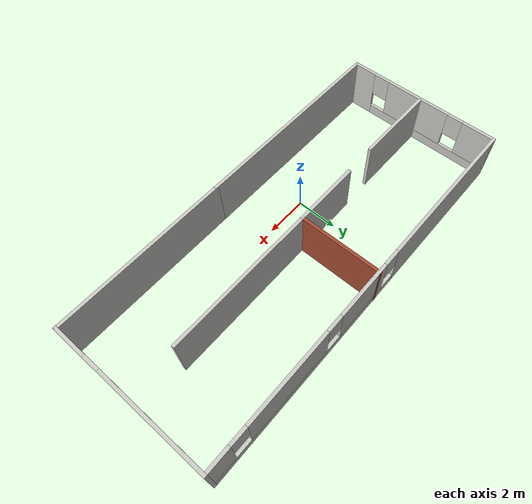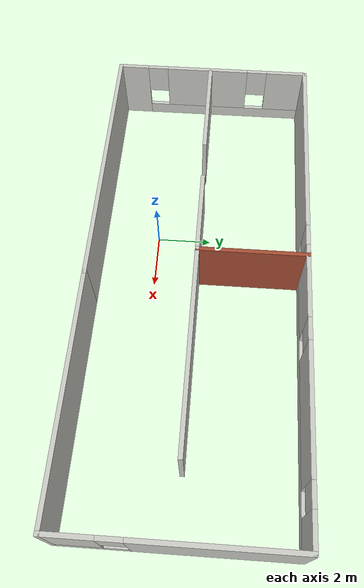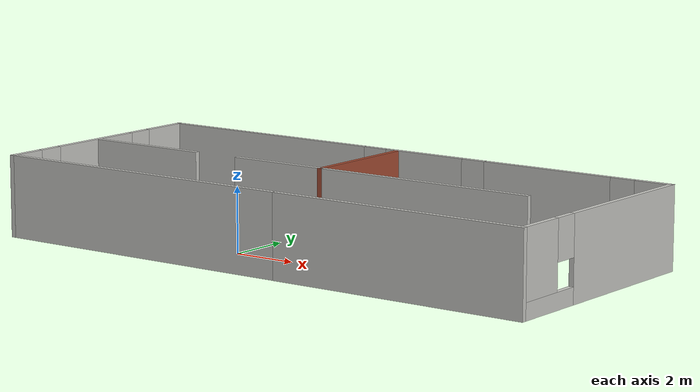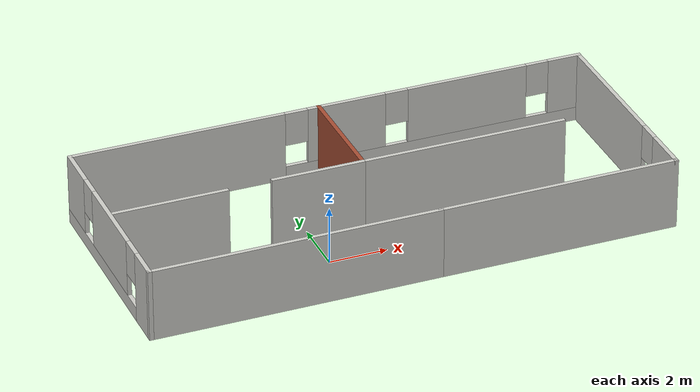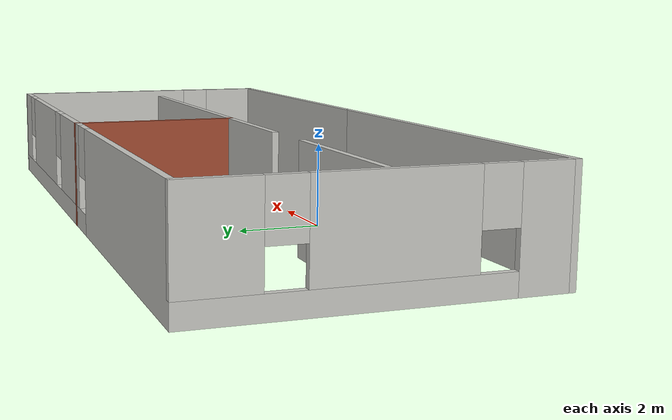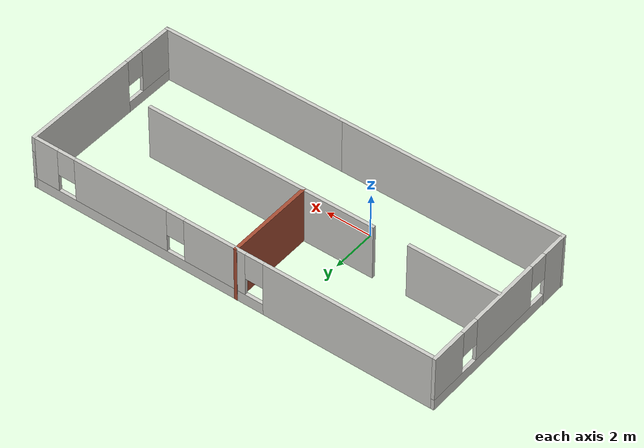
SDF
<?xml version='1.0'?>
<sdf version='1.7'>
  <model name='map_nho'>
    <pose>2.18057 1.66636 0 0 -0 0</pose>
    <link name='Wall_0'>
      <collision name='Wall_0_Collision'>
        <geometry>
          <box>
            <size>10 0.15 2.5</size>
          </box>
        </geometry>
        <pose>0 0 1.25 0 -0 0</pose>
      </collision>
      <visual name='Wall_0_Visual'>
        <pose>0 0 1.25 0 -0 0</pose>
        <geometry>
          <box>
            <size>10 0.15 2.5</size>
          </box>
        </geometry>
        <material>
          <script>
            <uri>file://media/materials/scripts/gazebo.material</uri>
            <name>Gazebo/CeilingTiled</name>
          </script>
          <ambient>0.960784 0.47451 0 1</ambient>
        </material>
        <meta>
          <layer>0</layer>
        </meta>
      </visual>
      <pose>-4.125 -3.8042 0 0 -0 0</pose>
    </link>
    <link name='Wall_10'>
      <pose>9.05 -0.004204 0 0 -0 -1.5708</pose>
      <visual name='Wall_10_Visual_0'>
        <pose>-1.23107 0 1.25 0 -0 0</pose>
        <geometry>
          <box>
            <size>5.28787 0.15 2.5</size>
          </box>
        </geometry>
        <material>
          <script>
            <uri>file://media/materials/scripts/gazebo.material</uri>
            <name>Gazebo/CeilingTiled</name>
          </script>
          <ambient>0.180392 0.203922 0.211765 1</ambient>
        </material>
        <meta>
          <layer>0</layer>
        </meta>
      </visual>
      <collision name='Wall_10_Collision_0'>
        <geometry>
          <box>
            <size>5.28787 0.15 2.5</size>
          </box>
        </geometry>
        <pose>-1.23107 0 1.25 0 -0 0</pose>
      </collision>
      <visual name='Wall_10_Visual_1'>
        <pose>2.64393 0 0.25 0 -0 0</pose>
        <geometry>
          <box>
            <size>2.46213 0.15 0.5</size>
          </box>
        </geometry>
        <material>
          <script>
            <uri>file://media/materials/scripts/gazebo.material</uri>
            <name>Gazebo/CeilingTiled</name>
          </script>
          <ambient>0.180392 0.203922 0.211765 1</ambient>
        </material>
        <meta>
          <layer>0</layer>
        </meta>
      </visual>
      <collision name='Wall_10_Collision_1'>
        <geometry>
          <box>
            <size>2.46213 0.15 0.5</size>
          </box>
        </geometry>
        <pose>2.64393 0 0.25 0 -0 0</pose>
      </collision>
      <visual name='Wall_10_Visual_2'>
        <pose>3.04393 0 1.5 0 -0 0</pose>
        <geometry>
          <box>
            <size>1.66213 0.15 2</size>
          </box>
        </geometry>
        <material>
          <script>
            <uri>file://media/materials/scripts/gazebo.material</uri>
            <name>Gazebo/CeilingTiled</name>
          </script>
          <ambient>0.180392 0.203922 0.211765 1</ambient>
        </material>
        <meta>
          <layer>0</layer>
        </meta>
      </visual>
      <collision name='Wall_10_Collision_2'>
        <geometry>
          <box>
            <size>1.66213 0.15 2</size>
          </box>
        </geometry>
        <pose>3.04393 0 1.5 0 -0 0</pose>
      </collision>
      <visual name='Wall_10_Visual_3'>
        <pose>1.81287 0 1.9 0 -0 0</pose>
        <geometry>
          <box>
            <size>0.8 0.15 1.2</size>
          </box>
        </geometry>
        <material>
          <script>
            <uri>file://media/materials/scripts/gazebo.material</uri>
            <name>Gazebo/CeilingTiled</name>
          </script>
          <ambient>0.180392 0.203922 0.211765 1</ambient>
        </material>
        <meta>
          <layer>0</layer>
        </meta>
      </visual>
      <collision name='Wall_10_Collision_3'>
        <geometry>
          <box>
            <size>0.8 0.15 1.2</size>
          </box>
        </geometry>
        <pose>1.81287 0 1.9 0 -0 0</pose>
      </collision>
    </link>
    <link name='Wall_11'>
      <collision name='Wall_11_Collision'>
        <geometry>
          <box>
            <size>8.4 0.15 2.5</size>
          </box>
        </geometry>
        <pose>0 0 1.25 0 -0 0</pose>
      </collision>
      <visual name='Wall_11_Visual'>
        <pose>0 0 1.25 0 -0 0</pose>
        <geometry>
          <box>
            <size>8.4 0.15 2.5</size>
          </box>
        </geometry>
        <material>
          <script>
            <uri>file://media/materials/scripts/gazebo.material</uri>
            <name>Gazebo/CeilingTiled</name>
          </script>
          <ambient>0.960784 0.47451 0 1</ambient>
        </material>
        <meta>
          <layer>0</layer>
        </meta>
      </visual>
      <pose>4.925 -3.8042 0 0 -0 3.14159</pose>
    </link>
    <link name='Wall_15'>
      <collision name='Wall_15_Collision'>
        <geometry>
          <box>
            <size>4 0.15 2.5</size>
          </box>
        </geometry>
        <pose>0 0 1.25 0 -0 0</pose>
      </collision>
      <visual name='Wall_15_Visual'>
        <pose>0 0 1.25 0 -0 0</pose>
        <geometry>
          <box>
            <size>4 0.15 2.5</size>
          </box>
        </geometry>
        <material>
          <script>
            <uri>file://media/materials/scripts/gazebo.material</uri>
            <name>Gazebo/Bricks</name>
          </script>
          <ambient>1 1 1 1</ambient>
        </material>
        <meta>
          <layer>0</layer>
        </meta>
      </visual>
      <pose>-0.364593 1.8792 0 0 -0 -1.5708</pose>
    </link>
    <link name='Wall_23'>
      <collision name='Wall_23_Collision'>
        <geometry>
          <box>
            <size>3.25 0.15 2.5</size>
          </box>
        </geometry>
        <pose>0 0 1.25 0 -0 0</pose>
      </collision>
      <visual name='Wall_23_Visual'>
        <pose>0 0 1.25 0 -0 0</pose>
        <geometry>
          <box>
            <size>3.25 0.15 2.5</size>
          </box>
        </geometry>
        <material>
          <script>
            <uri>file://media/materials/scripts/gazebo.material</uri>
            <name>Gazebo/CeilingTiled</name>
          </script>
          <ambient>0.937255 0.160784 0.160784 1</ambient>
        </material>
        <meta>
          <layer>0</layer>
        </meta>
      </visual>
      <pose>-1.91459 -0.045796 0 0 -0 3.14159</pose>
    </link>
    <link name='Wall_25'>
      <collision name='Wall_25_Collision'>
        <geometry>
          <box>
            <size>4 0.15 2.5</size>
          </box>
        </geometry>
        <pose>0 0 1.25 0 -0 0</pose>
      </collision>
      <visual name='Wall_25_Visual'>
        <pose>0 0 1.25 0 -0 0</pose>
        <geometry>
          <box>
            <size>4 0.15 2.5</size>
          </box>
        </geometry>
        <material>
          <script>
            <uri>file://media/materials/scripts/gazebo.material</uri>
            <name>Gazebo/CeilingTiled</name>
          </script>
          <ambient>0.8 0 0 1</ambient>
        </material>
        <meta>
          <layer>0</layer>
        </meta>
      </visual>
      <pose>-7.01547 -0.083272 0 0 -0 3.14159</pose>
    </link>
    <link name='Wall_27'>
      <collision name='Wall_27_Collision'>
        <geometry>
          <box>
            <size>7.25 0.15 2.5</size>
          </box>
        </geometry>
        <pose>0 0 1.25 0 -0 0</pose>
      </collision>
      <visual name='Wall_27_Visual'>
        <pose>0 0 1.25 0 -0 0</pose>
        <geometry>
          <box>
            <size>7.25 0.15 2.5</size>
          </box>
        </geometry>
        <material>
          <script>
            <uri>file://media/materials/scripts/gazebo.material</uri>
            <name>Gazebo/CeilingTiled</name>
          </script>
          <ambient>0 1 0 1</ambient>
        </material>
        <meta>
          <layer>0</layer>
        </meta>
      </visual>
      <pose>3.18541 -0.045796 0 0 -0 0</pose>
    </link>
    <link name='Wall_6'>
      <pose>-9.05 -0.004204 0 0 -0 1.5708</pose>
      <visual name='Wall_6_Visual_0'>
        <pose>-3.26066 0 1.25 0 -0 0</pose>
        <geometry>
          <box>
            <size>1.22869 0.15 2.5</size>
          </box>
        </geometry>
        <material>
          <script>
            <uri>file://media/materials/scripts/gazebo.material</uri>
            <name>Gazebo/CeilingTiled</name>
          </script>
          <ambient>0.180392 0.203922 0.211765 1</ambient>
        </material>
        <meta>
          <layer>0</layer>
        </meta>
      </visual>
      <collision name='Wall_6_Collision_0'>
        <geometry>
          <box>
            <size>1.22869 0.15 2.5</size>
          </box>
        </geometry>
        <pose>-3.26066 0 1.25 0 -0 0</pose>
      </collision>
      <visual name='Wall_6_Visual_1'>
        <pose>0.614342 0 0.25 0 -0 0</pose>
        <geometry>
          <box>
            <size>6.52132 0.15 0.5</size>
          </box>
        </geometry>
        <material>
          <script>
            <uri>file://media/materials/scripts/gazebo.material</uri>
            <name>Gazebo/CeilingTiled</name>
          </script>
          <ambient>0.180392 0.203922 0.211765 1</ambient>
        </material>
        <meta>
          <layer>0</layer>
        </meta>
      </visual>
      <collision name='Wall_6_Collision_1'>
        <geometry>
          <box>
            <size>6.52132 0.15 0.5</size>
          </box>
        </geometry>
        <pose>0.614342 0 0.25 0 -0 0</pose>
      </collision>
      <visual name='Wall_6_Visual_2'>
        <pose>-0.20454 0 1.5 0 -0 0</pose>
        <geometry>
          <box>
            <size>3.28355 0.15 2</size>
          </box>
        </geometry>
        <material>
          <script>
            <uri>file://media/materials/scripts/gazebo.material</uri>
            <name>Gazebo/CeilingTiled</name>
          </script>
          <ambient>0.180392 0.203922 0.211765 1</ambient>
        </material>
        <meta>
          <layer>0</layer>
        </meta>
      </visual>
      <collision name='Wall_6_Collision_2'>
        <geometry>
          <box>
            <size>3.28355 0.15 2</size>
          </box>
        </geometry>
        <pose>-0.20454 0 1.5 0 -0 0</pose>
      </collision>
      <visual name='Wall_6_Visual_3'>
        <pose>3.05612 0 1.5 0 -0 0</pose>
        <geometry>
          <box>
            <size>1.63777 0.15 2</size>
          </box>
        </geometry>
        <material>
          <script>
            <uri>file://media/materials/scripts/gazebo.material</uri>
            <name>Gazebo/CeilingTiled</name>
          </script>
          <ambient>0.180392 0.203922 0.211765 1</ambient>
        </material>
        <meta>
          <layer>0</layer>
        </meta>
      </visual>
      <collision name='Wall_6_Collision_3'>
        <geometry>
          <box>
            <size>1.63777 0.15 2</size>
          </box>
        </geometry>
        <pose>3.05612 0 1.5 0 -0 0</pose>
      </collision>
      <visual name='Wall_6_Visual_4'>
        <pose>-2.24632 0 1.9 0 -0 0</pose>
        <geometry>
          <box>
            <size>0.8 0.15 1.2</size>
          </box>
        </geometry>
        <material>
          <script>
            <uri>file://media/materials/scripts/gazebo.material</uri>
            <name>Gazebo/CeilingTiled</name>
          </script>
          <ambient>0.180392 0.203922 0.211765 1</ambient>
        </material>
        <meta>
          <layer>0</layer>
        </meta>
      </visual>
      <collision name='Wall_6_Collision_4'>
        <geometry>
          <box>
            <size>0.8 0.15 1.2</size>
          </box>
        </geometry>
        <pose>-2.24632 0 1.9 0 -0 0</pose>
      </collision>
      <visual name='Wall_6_Visual_5'>
        <pose>1.83723 0 1.9 0 -0 0</pose>
        <geometry>
          <box>
            <size>0.8 0.15 1.2</size>
          </box>
        </geometry>
        <material>
          <script>
            <uri>file://media/materials/scripts/gazebo.material</uri>
            <name>Gazebo/CeilingTiled</name>
          </script>
          <ambient>0.180392 0.203922 0.211765 1</ambient>
        </material>
        <meta>
          <layer>0</layer>
        </meta>
      </visual>
      <collision name='Wall_6_Collision_5'>
        <geometry>
          <box>
            <size>0.8 0.15 1.2</size>
          </box>
        </geometry>
        <pose>1.83723 0 1.9 0 -0 0</pose>
      </collision>
    </link>
    <link name='Wall_9'>
      <pose>-0 3.7958 0 0 -0 0</pose>
      <visual name='Wall_9_Visual_0'>
        <pose>-5.35721 0 1.25 0 -0 0</pose>
        <geometry>
          <box>
            <size>7.53558 0.15 2.5</size>
          </box>
        </geometry>
        <material>
          <script>
            <uri>file://media/materials/scripts/gazebo.material</uri>
            <name>Gazebo/CeilingTiled</name>
          </script>
          <ambient>0.12549 0.290196 0.529412 1</ambient>
        </material>
        <meta>
          <layer>0</layer>
        </meta>
      </visual>
      <collision name='Wall_9_Collision_0'>
        <geometry>
          <box>
            <size>7.53558 0.15 2.5</size>
          </box>
        </geometry>
        <pose>-5.35721 0 1.25 0 -0 0</pose>
      </collision>
      <visual name='Wall_9_Visual_1'>
        <pose>3.76779 0 0.25 0 -0 0</pose>
        <geometry>
          <box>
            <size>10.7144 0.15 0.5</size>
          </box>
        </geometry>
        <material>
          <script>
            <uri>file://media/materials/scripts/gazebo.material</uri>
            <name>Gazebo/CeilingTiled</name>
          </script>
          <ambient>0.12549 0.290196 0.529412 1</ambient>
        </material>
        <meta>
          <layer>0</layer>
        </meta>
      </visual>
      <collision name='Wall_9_Collision_1'>
        <geometry>
          <box>
            <size>10.7144 0.15 0.5</size>
          </box>
        </geometry>
        <pose>3.76779 0 0.25 0 -0 0</pose>
      </collision>
      <visual name='Wall_9_Visual_2'>
        <pose>0.601408 0 1.5 0 -0 0</pose>
        <geometry>
          <box>
            <size>2.78166 0.15 2</size>
          </box>
        </geometry>
        <material>
          <script>
            <uri>file://media/materials/scripts/gazebo.material</uri>
            <name>Gazebo/CeilingTiled</name>
          </script>
          <ambient>0.12549 0.290196 0.529412 1</ambient>
        </material>
        <meta>
          <layer>0</layer>
        </meta>
      </visual>
      <collision name='Wall_9_Collision_2'>
        <geometry>
          <box>
            <size>2.78166 0.15 2</size>
          </box>
        </geometry>
        <pose>0.601408 0 1.5 0 -0 0</pose>
      </collision>
      <visual name='Wall_9_Visual_3'>
        <pose>4.94731 0 1.5 0 -0 0</pose>
        <geometry>
          <box>
            <size>4.31014 0.15 2</size>
          </box>
        </geometry>
        <material>
          <script>
            <uri>file://media/materials/scripts/gazebo.material</uri>
            <name>Gazebo/CeilingTiled</name>
          </script>
          <ambient>0.12549 0.290196 0.529412 1</ambient>
        </material>
        <meta>
          <layer>0</layer>
        </meta>
      </visual>
      <collision name='Wall_9_Collision_3'>
        <geometry>
          <box>
            <size>4.31014 0.15 2</size>
          </box>
        </geometry>
        <pose>4.94731 0 1.5 0 -0 0</pose>
      </collision>
      <visual name='Wall_9_Visual_4'>
        <pose>8.51369 0 1.5 0 -0 0</pose>
        <geometry>
          <box>
            <size>1.22262 0.15 2</size>
          </box>
        </geometry>
        <material>
          <script>
            <uri>file://media/materials/scripts/gazebo.material</uri>
            <name>Gazebo/CeilingTiled</name>
          </script>
          <ambient>0.12549 0.290196 0.529412 1</ambient>
        </material>
        <meta>
          <layer>0</layer>
        </meta>
      </visual>
      <collision name='Wall_9_Collision_4'>
        <geometry>
          <box>
            <size>1.22262 0.15 2</size>
          </box>
        </geometry>
        <pose>8.51369 0 1.5 0 -0 0</pose>
      </collision>
      <visual name='Wall_9_Visual_5'>
        <pose>-1.18942 0 1.9 0 -0 0</pose>
        <geometry>
          <box>
            <size>0.8 0.15 1.2</size>
          </box>
        </geometry>
        <material>
          <script>
            <uri>file://media/materials/scripts/gazebo.material</uri>
            <name>Gazebo/CeilingTiled</name>
          </script>
          <ambient>0.12549 0.290196 0.529412 1</ambient>
        </material>
        <meta>
          <layer>0</layer>
        </meta>
      </visual>
      <collision name='Wall_9_Collision_5'>
        <geometry>
          <box>
            <size>0.8 0.15 1.2</size>
          </box>
        </geometry>
        <pose>-1.18942 0 1.9 0 -0 0</pose>
      </collision>
      <visual name='Wall_9_Visual_6'>
        <pose>2.39224 0 1.9 0 -0 0</pose>
        <geometry>
          <box>
            <size>0.8 0.15 1.2</size>
          </box>
        </geometry>
        <material>
          <script>
            <uri>file://media/materials/scripts/gazebo.material</uri>
            <name>Gazebo/CeilingTiled</name>
          </script>
          <ambient>0.12549 0.290196 0.529412 1</ambient>
        </material>
        <meta>
          <layer>0</layer>
        </meta>
      </visual>
      <collision name='Wall_9_Collision_6'>
        <geometry>
          <box>
            <size>0.8 0.15 1.2</size>
          </box>
        </geometry>
        <pose>2.39224 0 1.9 0 -0 0</pose>
      </collision>
      <visual name='Wall_9_Visual_7'>
        <pose>7.50238 0 1.9 0 -0 0</pose>
        <geometry>
          <box>
            <size>0.8 0.15 1.2</size>
          </box>
        </geometry>
        <material>
          <script>
            <uri>file://media/materials/scripts/gazebo.material</uri>
            <name>Gazebo/CeilingTiled</name>
          </script>
          <ambient>0.12549 0.290196 0.529412 1</ambient>
        </material>
        <meta>
          <layer>0</layer>
        </meta>
      </visual>
      <collision name='Wall_9_Collision_7'>
        <geometry>
          <box>
            <size>0.8 0.15 1.2</size>
          </box>
        </geometry>
        <pose>7.50238 0 1.9 0 -0 0</pose>
      </collision>
    </link>
    <static>1</static>
  </model>
</sdf>
